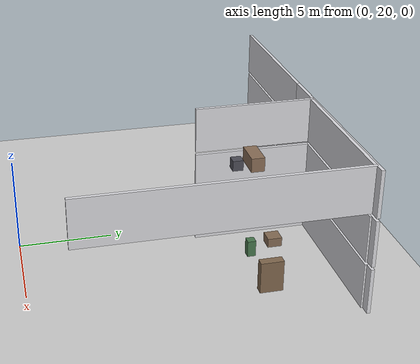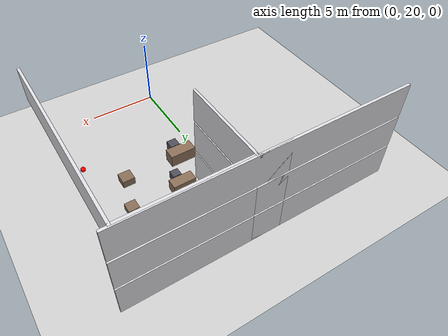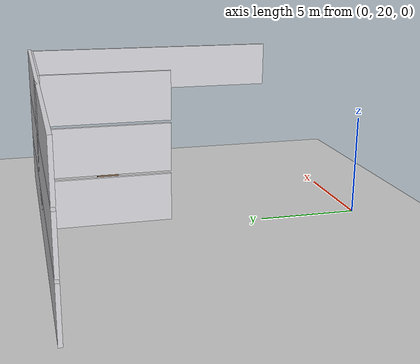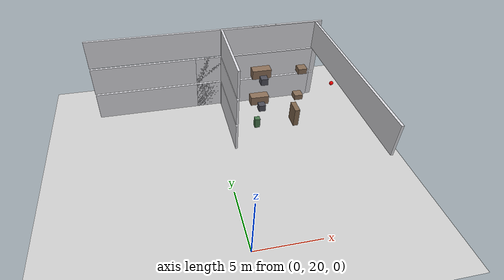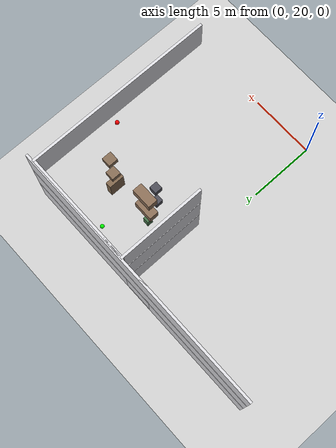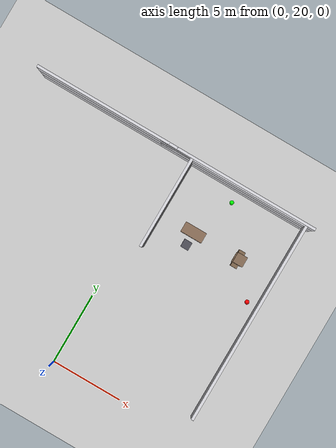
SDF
<sdf version="1.7">
 <world name="generated_world">
  <include><uri>model://sun</uri></include>
  <include><uri>model://ground_plane</uri></include>
  <model name="generated_building">
   <static>true</static>
   <link name="exterior_north_floor_0">
    <pose>0.0000 35.9100 1.2250 0.0000 0.0000 0.0000</pose>
    <collision name="exterior_north_floor_0_collision">
     <geometry><box><size>20.0000 0.1800 2.4500</size></box></geometry>
    </collision>
    <visual name="exterior_north_floor_0_visual">
     <geometry><box><size>20.0000 0.1800 2.4500</size></box></geometry>
     <material><ambient>0.86 0.86 0.88 1</ambient><diffuse>0.86 0.86 0.88 1</diffuse></material>
    </visual>
    <gravity>false</gravity>
   </link>
   <link name="north_end_wall_floor_0">
    <pose>0.0000 35.9100 1.2250 0.0000 0.0000 0.0000</pose>
    <collision name="north_end_wall_floor_0_collision">
     <geometry><box><size>2.2000 0.1800 2.4500</size></box></geometry>
    </collision>
    <visual name="north_end_wall_floor_0_visual">
     <geometry><box><size>2.2000 0.1800 2.4500</size></box></geometry>
     <material><ambient>0.86 0.86 0.88 1</ambient><diffuse>0.86 0.86 0.88 1</diffuse></material>
    </visual>
    <gravity>false</gravity>
   </link>
   <link name="floor_0_room_3_corridor_wall_upper">
    <pose>1.1900 32.7025 1.2250 0.0000 0.0000 0.0000</pose>
    <collision name="floor_0_room_3_corridor_wall_upper_collision">
     <geometry><box><size>0.1800 6.4150 2.4500</size></box></geometry>
    </collision>
    <visual name="floor_0_room_3_corridor_wall_upper_visual">
     <geometry><box><size>0.1800 6.4150 2.4500</size></box></geometry>
     <material><ambient>0.86 0.86 0.88 1</ambient><diffuse>0.86 0.86 0.88 1</diffuse></material>
    </visual>
    <gravity>false</gravity>
   </link>
   <link name="floor_0_room_3_north_wall">
    <pose>5.3000 35.8200 1.2250 0.0000 0.0000 0.0000</pose>
    <collision name="floor_0_room_3_north_wall_collision">
     <geometry><box><size>8.4000 0.1800 2.4500</size></box></geometry>
    </collision>
    <visual name="floor_0_room_3_north_wall_visual">
     <geometry><box><size>8.4000 0.1800 2.4500</size></box></geometry>
     <material><ambient>0.86 0.86 0.88 1</ambient><diffuse>0.86 0.86 0.88 1</diffuse></material>
    </visual>
    <gravity>false</gravity>
   </link>
   <link name="floor_0_room_3_bookshelf">
    <pose>7.0000 31.9525 0.8500 0.0000 0.0000 0.0000</pose>
    <collision name="floor_0_room_3_bookshelf_collision">
     <geometry><box><size>0.4500 1.2000 1.7000</size></box></geometry>
    </collision>
    <visual name="floor_0_room_3_bookshelf_visual">
     <geometry><box><size>0.4500 1.2000 1.7000</size></box></geometry>
     <material><ambient>0.50 0.40 0.30 1</ambient><diffuse>0.50 0.40 0.30 1</diffuse></material>
    </visual>
    <gravity>false</gravity>
   </link>
   <link name="floor_0_room_3_planter">
    <pose>3.6000 31.9525 0.4500 0.0000 0.0000 0.0000</pose>
    <collision name="floor_0_room_3_planter_collision">
     <geometry><box><size>0.4500 0.4500 0.9000</size></box></geometry>
    </collision>
    <visual name="floor_0_room_3_planter_visual">
     <geometry><box><size>0.4500 0.4500 0.9000</size></box></geometry>
     <material><ambient>0.28 0.46 0.30 1</ambient><diffuse>0.28 0.46 0.30 1</diffuse></material>
    </visual>
    <gravity>false</gravity>
   </link>
   <link name="exterior_north_floor_1">
    <pose>0.0000 35.9100 3.8250 0.0000 0.0000 0.0000</pose>
    <collision name="exterior_north_floor_1_collision">
     <geometry><box><size>20.0000 0.1800 2.4500</size></box></geometry>
    </collision>
    <visual name="exterior_north_floor_1_visual">
     <geometry><box><size>20.0000 0.1800 2.4500</size></box></geometry>
     <material><ambient>0.86 0.86 0.88 1</ambient><diffuse>0.86 0.86 0.88 1</diffuse></material>
    </visual>
    <gravity>false</gravity>
   </link>
   <link name="north_end_wall_floor_1">
    <pose>0.0000 35.9100 3.8250 0.0000 0.0000 0.0000</pose>
    <collision name="north_end_wall_floor_1_collision">
     <geometry><box><size>2.2000 0.1800 2.4500</size></box></geometry>
    </collision>
    <visual name="north_end_wall_floor_1_visual">
     <geometry><box><size>2.2000 0.1800 2.4500</size></box></geometry>
     <material><ambient>0.86 0.86 0.88 1</ambient><diffuse>0.86 0.86 0.88 1</diffuse></material>
    </visual>
    <gravity>false</gravity>
   </link>
   <link name="floor_1_room_3_corridor_wall_upper">
    <pose>1.1900 32.7025 3.8250 0.0000 0.0000 0.0000</pose>
    <collision name="floor_1_room_3_corridor_wall_upper_collision">
     <geometry><box><size>0.1800 6.4150 2.4500</size></box></geometry>
    </collision>
    <visual name="floor_1_room_3_corridor_wall_upper_visual">
     <geometry><box><size>0.1800 6.4150 2.4500</size></box></geometry>
     <material><ambient>0.86 0.86 0.88 1</ambient><diffuse>0.86 0.86 0.88 1</diffuse></material>
    </visual>
    <gravity>false</gravity>
   </link>
   <link name="floor_1_room_3_north_wall">
    <pose>5.3000 35.8200 3.8250 0.0000 0.0000 0.0000</pose>
    <collision name="floor_1_room_3_north_wall_collision">
     <geometry><box><size>8.4000 0.1800 2.4500</size></box></geometry>
    </collision>
    <visual name="floor_1_room_3_north_wall_visual">
     <geometry><box><size>8.4000 0.1800 2.4500</size></box></geometry>
     <material><ambient>0.86 0.86 0.88 1</ambient><diffuse>0.86 0.86 0.88 1</diffuse></material>
    </visual>
    <gravity>false</gravity>
   </link>
   <link name="floor_1_room_3_desk">
    <pose>3.6000 31.9525 3.0500 0.0000 0.0000 0.0000</pose>
    <collision name="floor_1_room_3_desk_collision">
     <geometry><box><size>1.5000 0.7000 0.7500</size></box></geometry>
    </collision>
    <visual name="floor_1_room_3_desk_visual">
     <geometry><box><size>1.5000 0.7000 0.7500</size></box></geometry>
     <material><ambient>0.54 0.43 0.34 1</ambient><diffuse>0.54 0.43 0.34 1</diffuse></material>
    </visual>
    <gravity>false</gravity>
   </link>
   <link name="floor_1_room_3_chair">
    <pose>3.6000 31.0525 2.8800 0.0000 0.0000 0.0000</pose>
    <collision name="floor_1_room_3_chair_collision">
     <geometry><box><size>0.5500 0.5500 0.5500</size></box></geometry>
    </collision>
    <visual name="floor_1_room_3_chair_visual">
     <geometry><box><size>0.5500 0.5500 0.5500</size></box></geometry>
     <material><ambient>0.30 0.30 0.34 1</ambient><diffuse>0.30 0.30 0.34 1</diffuse></material>
    </visual>
    <gravity>false</gravity>
   </link>
   <link name="floor_1_room_3_side_table">
    <pose>7.0000 31.9525 2.9200 0.0000 0.0000 0.0000</pose>
    <collision name="floor_1_room_3_side_table_collision">
     <geometry><box><size>0.7000 0.7000 0.4500</size></box></geometry>
    </collision>
    <visual name="floor_1_room_3_side_table_visual">
     <geometry><box><size>0.7000 0.7000 0.4500</size></box></geometry>
     <material><ambient>0.52 0.42 0.33 1</ambient><diffuse>0.52 0.42 0.33 1</diffuse></material>
    </visual>
    <gravity>false</gravity>
   </link>
   <link name="exterior_north_floor_2">
    <pose>0.0000 35.9100 6.4250 0.0000 0.0000 0.0000</pose>
    <collision name="exterior_north_floor_2_collision">
     <geometry><box><size>20.0000 0.1800 2.4500</size></box></geometry>
    </collision>
    <visual name="exterior_north_floor_2_visual">
     <geometry><box><size>20.0000 0.1800 2.4500</size></box></geometry>
     <material><ambient>0.86 0.86 0.88 1</ambient><diffuse>0.86 0.86 0.88 1</diffuse></material>
    </visual>
    <gravity>false</gravity>
   </link>
   <link name="north_end_wall_floor_2">
    <pose>0.0000 35.9100 6.4250 0.0000 0.0000 0.0000</pose>
    <collision name="north_end_wall_floor_2_collision">
     <geometry><box><size>2.2000 0.1800 2.4500</size></box></geometry>
    </collision>
    <visual name="north_end_wall_floor_2_visual">
     <geometry><box><size>2.2000 0.1800 2.4500</size></box></geometry>
     <material><ambient>0.86 0.86 0.88 1</ambient><diffuse>0.86 0.86 0.88 1</diffuse></material>
    </visual>
    <gravity>false</gravity>
   </link>
   <link name="floor_2_room_3_corridor_wall_upper">
    <pose>1.1900 32.7025 6.4250 0.0000 0.0000 0.0000</pose>
    <collision name="floor_2_room_3_corridor_wall_upper_collision">
     <geometry><box><size>0.1800 6.4150 2.4500</size></box></geometry>
    </collision>
    <visual name="floor_2_room_3_corridor_wall_upper_visual">
     <geometry><box><size>0.1800 6.4150 2.4500</size></box></geometry>
     <material><ambient>0.86 0.86 0.88 1</ambient><diffuse>0.86 0.86 0.88 1</diffuse></material>
    </visual>
    <gravity>false</gravity>
   </link>
   <link name="floor_2_room_3_east_wall">
    <pose>9.4100 28.8950 6.4250 0.0000 0.0000 0.0000</pose>
    <collision name="floor_2_room_3_east_wall_collision">
     <geometry><box><size>0.1800 14.0300 2.4500</size></box></geometry>
    </collision>
    <visual name="floor_2_room_3_east_wall_visual">
     <geometry><box><size>0.1800 14.0300 2.4500</size></box></geometry>
     <material><ambient>0.86 0.86 0.88 1</ambient><diffuse>0.86 0.86 0.88 1</diffuse></material>
    </visual>
    <gravity>false</gravity>
   </link>
   <link name="floor_2_room_3_north_wall">
    <pose>5.3000 35.8200 6.4250 0.0000 0.0000 0.0000</pose>
    <collision name="floor_2_room_3_north_wall_collision">
     <geometry><box><size>8.4000 0.1800 2.4500</size></box></geometry>
    </collision>
    <visual name="floor_2_room_3_north_wall_visual">
     <geometry><box><size>8.4000 0.1800 2.4500</size></box></geometry>
     <material><ambient>0.86 0.86 0.88 1</ambient><diffuse>0.86 0.86 0.88 1</diffuse></material>
    </visual>
    <gravity>false</gravity>
   </link>
   <link name="floor_2_room_3_desk">
    <pose>3.6000 31.9525 5.6500 0.0000 0.0000 0.0000</pose>
    <collision name="floor_2_room_3_desk_collision">
     <geometry><box><size>1.5000 0.7000 0.7500</size></box></geometry>
    </collision>
    <visual name="floor_2_room_3_desk_visual">
     <geometry><box><size>1.5000 0.7000 0.7500</size></box></geometry>
     <material><ambient>0.54 0.43 0.34 1</ambient><diffuse>0.54 0.43 0.34 1</diffuse></material>
    </visual>
    <gravity>false</gravity>
   </link>
   <link name="floor_2_room_3_chair">
    <pose>3.6000 31.0525 5.4800 0.0000 0.0000 0.0000</pose>
    <collision name="floor_2_room_3_chair_collision">
     <geometry><box><size>0.5500 0.5500 0.5500</size></box></geometry>
    </collision>
    <visual name="floor_2_room_3_chair_visual">
     <geometry><box><size>0.5500 0.5500 0.5500</size></box></geometry>
     <material><ambient>0.30 0.30 0.34 1</ambient><diffuse>0.30 0.30 0.34 1</diffuse></material>
    </visual>
    <gravity>false</gravity>
   </link>
   <link name="floor_2_room_3_side_table">
    <pose>7.0000 31.9525 5.5200 0.0000 0.0000 0.0000</pose>
    <collision name="floor_2_room_3_side_table_collision">
     <geometry><box><size>0.7000 0.7000 0.4500</size></box></geometry>
    </collision>
    <visual name="floor_2_room_3_side_table_visual">
     <geometry><box><size>0.7000 0.7000 0.4500</size></box></geometry>
     <material><ambient>0.52 0.42 0.33 1</ambient><diffuse>0.52 0.42 0.33 1</diffuse></material>
    </visual>
    <gravity>false</gravity>
   </link>
  </model>
  <model name="distractor_green_sphere_02">
   <static>true</static>
   <pose>4.758196 34.872128 2.750000 0.000000 0.000000 0.000000</pose>
   <link name="link">
    <collision name="collision"><geometry><sphere><radius>0.150</radius></sphere></geometry></collision>
    <visual name="visual">
     <geometry><sphere><radius>0.150</radius></sphere></geometry>
     <material><ambient>0.0 1.0 0.0 1.0</ambient><diffuse>0.0 1.0 0.0 1.0</diffuse></material>
    </visual>
   </link>
  </model>
  <model name="danger_red_sphere_03">
   <static>true</static>
   <pose>8.733353 29.875616 5.350000 0.000000 0.000000 0.000000</pose>
   <link name="link">
    <collision name="collision"><geometry><sphere><radius>0.150</radius></sphere></geometry></collision>
    <visual name="visual">
     <geometry><sphere><radius>0.150</radius></sphere></geometry>
     <material><ambient>1.0 0.0 0.0 1.0</ambient><diffuse>1.0 0.0 0.0 1.0</diffuse></material>
    </visual>
   </link>
  </model>
 </world>
</sdf>
